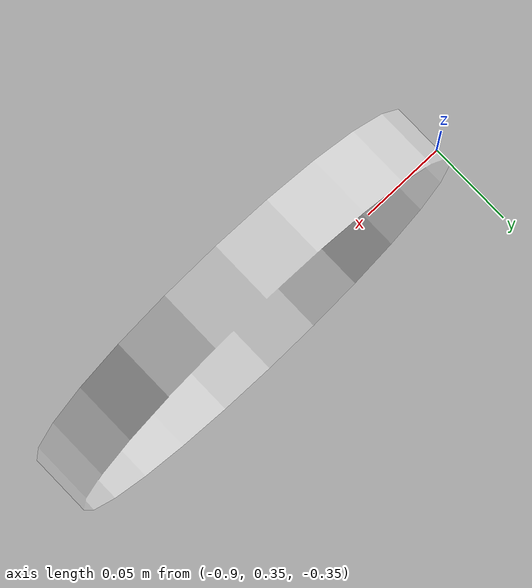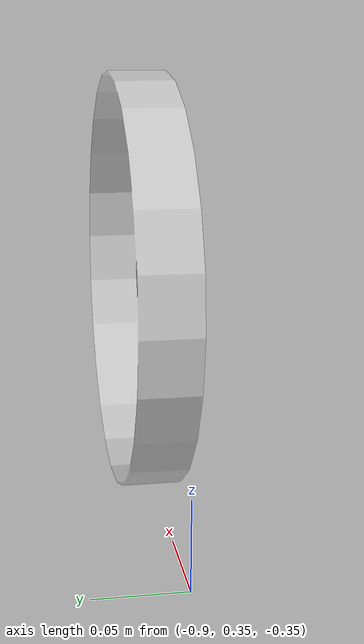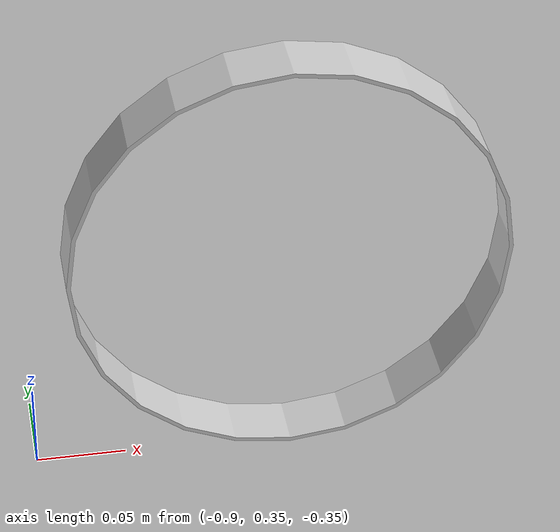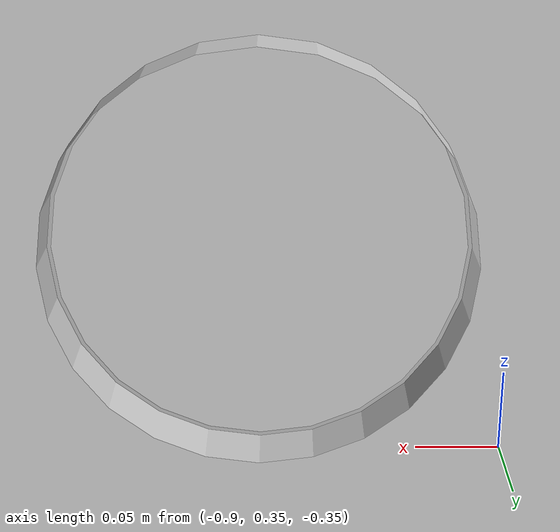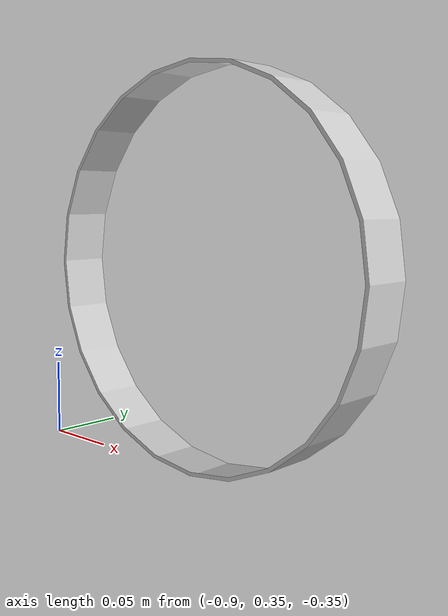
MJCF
<mujoco model="original-56">
  <default>
    <default class="visual">
      <geom group="2" type="mesh" contype="0" conaffinity="0"/>
    </default>
    <default class="collision">
      <geom group="3" type="mesh"/>
    </default>
  </default>
  <asset>
    <material name="material_0_0" specular="0.06666666666666667" shininess="0.03" rgba="0.8 0.8 0.8 1"/>
    <mesh file="original-56.obj"/>
  </asset>
  <worldbody>
    <body name="original-56">
      <geom material="material_0_0" mesh="original-56" class="visual"/>
      <geom mesh="original-56" class="collision"/>
    </body>
  </worldbody>
</mujoco>
